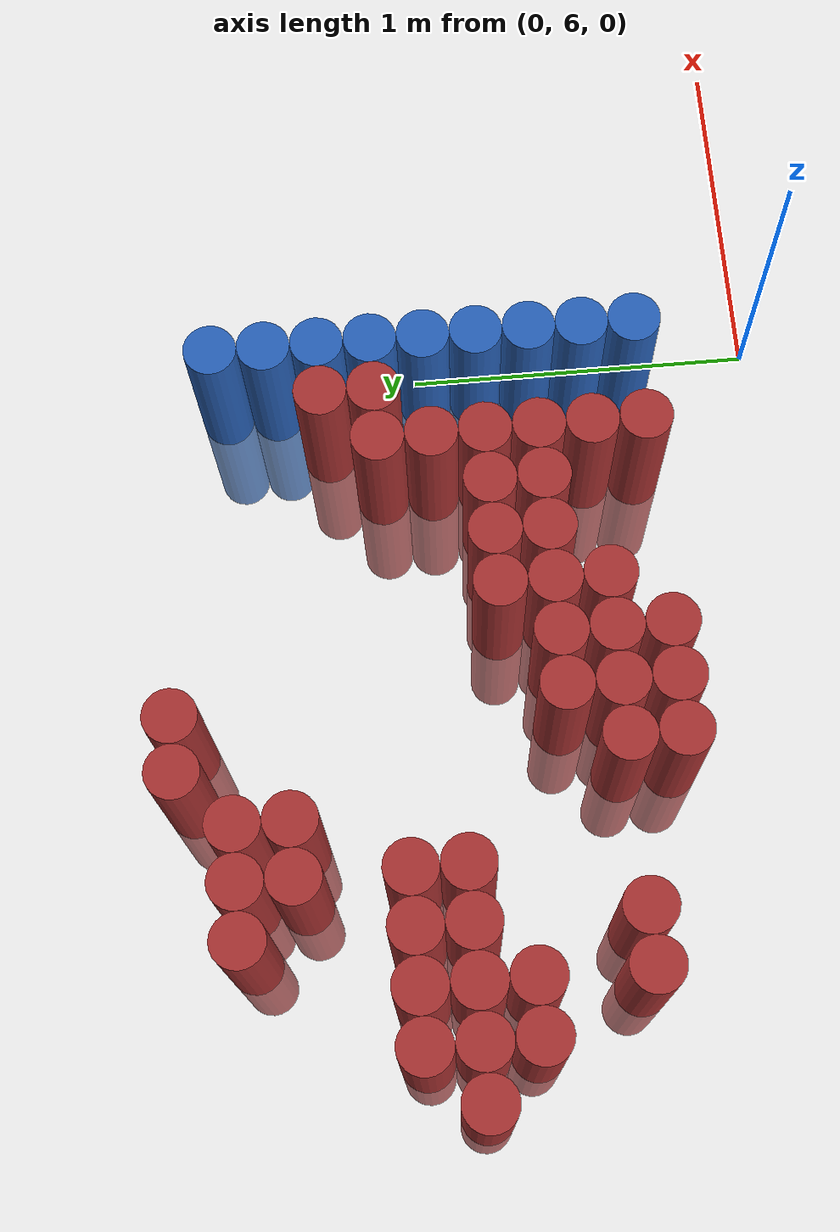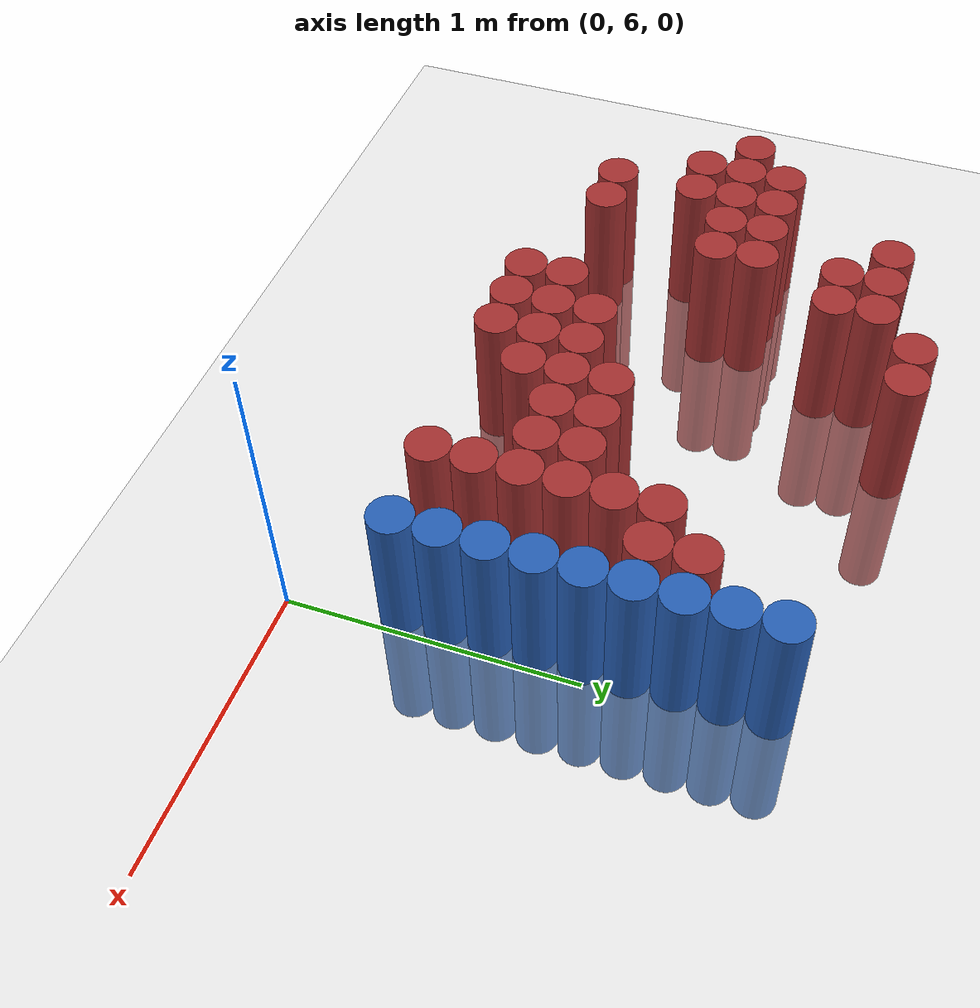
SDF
<sdf version="1.6">
 <world name="default">
  <model name="ground_plane">
   <static>1</static>
   <link name="link">
    <collision name="collision">
     <geometry><plane><normal>0 0 1</normal><size>100 100</size></plane></geometry>
     <surface><friction><ode><mu>100</mu><mu2>50</mu2></ode></friction></surface>
    </collision>
    <visual name="visual">
     <cast_shadows>0</cast_shadows>
     <geometry><plane><normal>0 0 1</normal><size>100 100</size></plane></geometry>
     <material>
      <script><uri>file://media/materials/scripts/gazebo.material</uri><name>Gazebo/Grey</name></script>
     </material>
    </visual>
   </link>
  </model>
  <model name="unit_cylinder_182">
   <static>1</static>
   <pose>-2.175000 6.975000 0.000000 0.000000 0.000000 0.000000</pose>
   <link name="link">
    <inertial>
     <mass>1</mass>
     <inertia><ixx>0.145833</ixx><ixy>0</ixy><ixz>0</ixz><iyy>0.145833</iyy><iyz>0</iyz><izz>0.125</izz></inertia>
    </inertial>
    <collision name="collision">
     <geometry><cylinder><radius>0.075000</radius><length>1</length></cylinder></geometry>
    </collision>
    <visual name="visual">
     <geometry><cylinder><radius>0.075000</radius><length>1</length></cylinder></geometry>
     <material>
      <ambient>0.648000 0.192000 0.192000 1</ambient>
      <diffuse>0.648000 0.192000 0.192000 1</diffuse>
     </material>
     <material>
      <script><name>Gazebo/Grey</name><uri>file://media/materials/scripts/gazebo.material</uri></script>
     </material>
    </visual>
   </link>
  </model>
  <model name="unit_cylinder_188">
   <static>1</static>
   <pose>-2.025000 6.825000 0.000000 0.000000 0.000000 0.000000</pose>
   <link name="link">
    <inertial>
     <mass>1</mass>
     <inertia><ixx>0.145833</ixx><ixy>0</ixy><ixz>0</ixz><iyy>0.145833</iyy><iyz>0</iyz><izz>0.125</izz></inertia>
    </inertial>
    <collision name="collision">
     <geometry><cylinder><radius>0.075000</radius><length>1</length></cylinder></geometry>
    </collision>
    <visual name="visual">
     <geometry><cylinder><radius>0.075000</radius><length>1</length></cylinder></geometry>
     <material>
      <ambient>0.648000 0.192000 0.192000 1</ambient>
      <diffuse>0.648000 0.192000 0.192000 1</diffuse>
     </material>
     <material>
      <script><name>Gazebo/Grey</name><uri>file://media/materials/scripts/gazebo.material</uri></script>
     </material>
    </visual>
   </link>
  </model>
  <model name="unit_cylinder_189">
   <static>1</static>
   <pose>-2.025000 6.975000 0.000000 0.000000 0.000000 0.000000</pose>
   <link name="link">
    <inertial>
     <mass>1</mass>
     <inertia><ixx>0.145833</ixx><ixy>0</ixy><ixz>0</ixz><iyy>0.145833</iyy><iyz>0</iyz><izz>0.125</izz></inertia>
    </inertial>
    <collision name="collision">
     <geometry><cylinder><radius>0.075000</radius><length>1</length></cylinder></geometry>
    </collision>
    <visual name="visual">
     <geometry><cylinder><radius>0.075000</radius><length>1</length></cylinder></geometry>
     <material>
      <ambient>0.648000 0.192000 0.192000 1</ambient>
      <diffuse>0.648000 0.192000 0.192000 1</diffuse>
     </material>
     <material>
      <script><name>Gazebo/Grey</name><uri>file://media/materials/scripts/gazebo.material</uri></script>
     </material>
    </visual>
   </link>
  </model>
  <model name="unit_cylinder_190">
   <static>1</static>
   <pose>-2.025000 7.125000 0.000000 0.000000 0.000000 0.000000</pose>
   <link name="link">
    <inertial>
     <mass>1</mass>
     <inertia><ixx>0.145833</ixx><ixy>0</ixy><ixz>0</ixz><iyy>0.145833</iyy><iyz>0</iyz><izz>0.125</izz></inertia>
    </inertial>
    <collision name="collision">
     <geometry><cylinder><radius>0.075000</radius><length>1</length></cylinder></geometry>
    </collision>
    <visual name="visual">
     <geometry><cylinder><radius>0.075000</radius><length>1</length></cylinder></geometry>
     <material>
      <ambient>0.648000 0.192000 0.192000 1</ambient>
      <diffuse>0.648000 0.192000 0.192000 1</diffuse>
     </material>
     <material>
      <script><name>Gazebo/Grey</name><uri>file://media/materials/scripts/gazebo.material</uri></script>
     </material>
    </visual>
   </link>
  </model>
  <model name="unit_cylinder_197">
   <static>1</static>
   <pose>-1.875000 6.525000 0.000000 0.000000 0.000000 0.000000</pose>
   <link name="link">
    <inertial>
     <mass>1</mass>
     <inertia><ixx>0.145833</ixx><ixy>0</ixy><ixz>0</ixz><iyy>0.145833</iyy><iyz>0</iyz><izz>0.125</izz></inertia>
    </inertial>
    <collision name="collision">
     <geometry><cylinder><radius>0.075000</radius><length>1</length></cylinder></geometry>
    </collision>
    <visual name="visual">
     <geometry><cylinder><radius>0.075000</radius><length>1</length></cylinder></geometry>
     <material>
      <ambient>0.648000 0.192000 0.192000 1</ambient>
      <diffuse>0.648000 0.192000 0.192000 1</diffuse>
     </material>
     <material>
      <script><name>Gazebo/Grey</name><uri>file://media/materials/scripts/gazebo.material</uri></script>
     </material>
    </visual>
   </link>
  </model>
  <model name="unit_cylinder_198">
   <static>1</static>
   <pose>-1.875000 6.825000 0.000000 0.000000 0.000000 0.000000</pose>
   <link name="link">
    <inertial>
     <mass>1</mass>
     <inertia><ixx>0.145833</ixx><ixy>0</ixy><ixz>0</ixz><iyy>0.145833</iyy><iyz>0</iyz><izz>0.125</izz></inertia>
    </inertial>
    <collision name="collision">
     <geometry><cylinder><radius>0.075000</radius><length>1</length></cylinder></geometry>
    </collision>
    <visual name="visual">
     <geometry><cylinder><radius>0.075000</radius><length>1</length></cylinder></geometry>
     <material>
      <ambient>0.648000 0.192000 0.192000 1</ambient>
      <diffuse>0.648000 0.192000 0.192000 1</diffuse>
     </material>
     <material>
      <script><name>Gazebo/Grey</name><uri>file://media/materials/scripts/gazebo.material</uri></script>
     </material>
    </visual>
   </link>
  </model>
  <model name="unit_cylinder_199">
   <static>1</static>
   <pose>-1.875000 6.975000 0.000000 0.000000 0.000000 0.000000</pose>
   <link name="link">
    <inertial>
     <mass>1</mass>
     <inertia><ixx>0.145833</ixx><ixy>0</ixy><ixz>0</ixz><iyy>0.145833</iyy><iyz>0</iyz><izz>0.125</izz></inertia>
    </inertial>
    <collision name="collision">
     <geometry><cylinder><radius>0.075000</radius><length>1</length></cylinder></geometry>
    </collision>
    <visual name="visual">
     <geometry><cylinder><radius>0.075000</radius><length>1</length></cylinder></geometry>
     <material>
      <ambient>0.648000 0.192000 0.192000 1</ambient>
      <diffuse>0.648000 0.192000 0.192000 1</diffuse>
     </material>
     <material>
      <script><name>Gazebo/Grey</name><uri>file://media/materials/scripts/gazebo.material</uri></script>
     </material>
    </visual>
   </link>
  </model>
  <model name="unit_cylinder_200">
   <static>1</static>
   <pose>-1.875000 7.125000 0.000000 0.000000 0.000000 0.000000</pose>
   <link name="link">
    <inertial>
     <mass>1</mass>
     <inertia><ixx>0.145833</ixx><ixy>0</ixy><ixz>0</ixz><iyy>0.145833</iyy><iyz>0</iyz><izz>0.125</izz></inertia>
    </inertial>
    <collision name="collision">
     <geometry><cylinder><radius>0.075000</radius><length>1</length></cylinder></geometry>
    </collision>
    <visual name="visual">
     <geometry><cylinder><radius>0.075000</radius><length>1</length></cylinder></geometry>
     <material>
      <ambient>0.648000 0.192000 0.192000 1</ambient>
      <diffuse>0.648000 0.192000 0.192000 1</diffuse>
     </material>
     <material>
      <script><name>Gazebo/Grey</name><uri>file://media/materials/scripts/gazebo.material</uri></script>
     </material>
    </visual>
   </link>
  </model>
  <model name="unit_cylinder_207">
   <static>1</static>
   <pose>-1.725000 6.525000 0.000000 0.000000 0.000000 0.000000</pose>
   <link name="link">
    <inertial>
     <mass>1</mass>
     <inertia><ixx>0.145833</ixx><ixy>0</ixy><ixz>0</ixz><iyy>0.145833</iyy><iyz>0</iyz><izz>0.125</izz></inertia>
    </inertial>
    <collision name="collision">
     <geometry><cylinder><radius>0.075000</radius><length>1</length></cylinder></geometry>
    </collision>
    <visual name="visual">
     <geometry><cylinder><radius>0.075000</radius><length>1</length></cylinder></geometry>
     <material>
      <ambient>0.648000 0.192000 0.192000 1</ambient>
      <diffuse>0.648000 0.192000 0.192000 1</diffuse>
     </material>
     <material>
      <script><name>Gazebo/Grey</name><uri>file://media/materials/scripts/gazebo.material</uri></script>
     </material>
    </visual>
   </link>
  </model>
  <model name="unit_cylinder_208">
   <static>1</static>
   <pose>-1.725000 6.975000 0.000000 0.000000 0.000000 0.000000</pose>
   <link name="link">
    <inertial>
     <mass>1</mass>
     <inertia><ixx>0.145833</ixx><ixy>0</ixy><ixz>0</ixz><iyy>0.145833</iyy><iyz>0</iyz><izz>0.125</izz></inertia>
    </inertial>
    <collision name="collision">
     <geometry><cylinder><radius>0.075000</radius><length>1</length></cylinder></geometry>
    </collision>
    <visual name="visual">
     <geometry><cylinder><radius>0.075000</radius><length>1</length></cylinder></geometry>
     <material>
      <ambient>0.648000 0.192000 0.192000 1</ambient>
      <diffuse>0.648000 0.192000 0.192000 1</diffuse>
     </material>
     <material>
      <script><name>Gazebo/Grey</name><uri>file://media/materials/scripts/gazebo.material</uri></script>
     </material>
    </visual>
   </link>
  </model>
  <model name="unit_cylinder_209">
   <static>1</static>
   <pose>-1.725000 7.125000 0.000000 0.000000 0.000000 0.000000</pose>
   <link name="link">
    <inertial>
     <mass>1</mass>
     <inertia><ixx>0.145833</ixx><ixy>0</ixy><ixz>0</ixz><iyy>0.145833</iyy><iyz>0</iyz><izz>0.125</izz></inertia>
    </inertial>
    <collision name="collision">
     <geometry><cylinder><radius>0.075000</radius><length>1</length></cylinder></geometry>
    </collision>
    <visual name="visual">
     <geometry><cylinder><radius>0.075000</radius><length>1</length></cylinder></geometry>
     <material>
      <ambient>0.648000 0.192000 0.192000 1</ambient>
      <diffuse>0.648000 0.192000 0.192000 1</diffuse>
     </material>
     <material>
      <script><name>Gazebo/Grey</name><uri>file://media/materials/scripts/gazebo.material</uri></script>
     </material>
    </visual>
   </link>
  </model>
  <model name="unit_cylinder_210">
   <static>1</static>
   <pose>-1.725000 7.575000 0.000000 0.000000 0.000000 0.000000</pose>
   <link name="link">
    <inertial>
     <mass>1</mass>
     <inertia><ixx>0.145833</ixx><ixy>0</ixy><ixz>0</ixz><iyy>0.145833</iyy><iyz>0</iyz><izz>0.125</izz></inertia>
    </inertial>
    <collision name="collision">
     <geometry><cylinder><radius>0.075000</radius><length>1</length></cylinder></geometry>
    </collision>
    <visual name="visual">
     <geometry><cylinder><radius>0.075000</radius><length>1</length></cylinder></geometry>
     <material>
      <ambient>0.648000 0.192000 0.192000 1</ambient>
      <diffuse>0.648000 0.192000 0.192000 1</diffuse>
     </material>
     <material>
      <script><name>Gazebo/Grey</name><uri>file://media/materials/scripts/gazebo.material</uri></script>
     </material>
    </visual>
   </link>
  </model>
  <model name="unit_cylinder_214">
   <static>1</static>
   <pose>-1.575000 6.975000 0.000000 0.000000 0.000000 0.000000</pose>
   <link name="link">
    <inertial>
     <mass>1</mass>
     <inertia><ixx>0.145833</ixx><ixy>0</ixy><ixz>0</ixz><iyy>0.145833</iyy><iyz>0</iyz><izz>0.125</izz></inertia>
    </inertial>
    <collision name="collision">
     <geometry><cylinder><radius>0.075000</radius><length>1</length></cylinder></geometry>
    </collision>
    <visual name="visual">
     <geometry><cylinder><radius>0.075000</radius><length>1</length></cylinder></geometry>
     <material>
      <ambient>0.648000 0.192000 0.192000 1</ambient>
      <diffuse>0.648000 0.192000 0.192000 1</diffuse>
     </material>
     <material>
      <script><name>Gazebo/Grey</name><uri>file://media/materials/scripts/gazebo.material</uri></script>
     </material>
    </visual>
   </link>
  </model>
  <model name="unit_cylinder_215">
   <static>1</static>
   <pose>-1.575000 7.125000 0.000000 0.000000 0.000000 0.000000</pose>
   <link name="link">
    <inertial>
     <mass>1</mass>
     <inertia><ixx>0.145833</ixx><ixy>0</ixy><ixz>0</ixz><iyy>0.145833</iyy><iyz>0</iyz><izz>0.125</izz></inertia>
    </inertial>
    <collision name="collision">
     <geometry><cylinder><radius>0.075000</radius><length>1</length></cylinder></geometry>
    </collision>
    <visual name="visual">
     <geometry><cylinder><radius>0.075000</radius><length>1</length></cylinder></geometry>
     <material>
      <ambient>0.648000 0.192000 0.192000 1</ambient>
      <diffuse>0.648000 0.192000 0.192000 1</diffuse>
     </material>
     <material>
      <script><name>Gazebo/Grey</name><uri>file://media/materials/scripts/gazebo.material</uri></script>
     </material>
    </visual>
   </link>
  </model>
  <model name="unit_cylinder_216">
   <static>1</static>
   <pose>-1.575000 7.425000 0.000000 0.000000 0.000000 0.000000</pose>
   <link name="link">
    <inertial>
     <mass>1</mass>
     <inertia><ixx>0.145833</ixx><ixy>0</ixy><ixz>0</ixz><iyy>0.145833</iyy><iyz>0</iyz><izz>0.125</izz></inertia>
    </inertial>
    <collision name="collision">
     <geometry><cylinder><radius>0.075000</radius><length>1</length></cylinder></geometry>
    </collision>
    <visual name="visual">
     <geometry><cylinder><radius>0.075000</radius><length>1</length></cylinder></geometry>
     <material>
      <ambient>0.648000 0.192000 0.192000 1</ambient>
      <diffuse>0.648000 0.192000 0.192000 1</diffuse>
     </material>
     <material>
      <script><name>Gazebo/Grey</name><uri>file://media/materials/scripts/gazebo.material</uri></script>
     </material>
    </visual>
   </link>
  </model>
  <model name="unit_cylinder_217">
   <static>1</static>
   <pose>-1.575000 7.575000 0.000000 0.000000 0.000000 0.000000</pose>
   <link name="link">
    <inertial>
     <mass>1</mass>
     <inertia><ixx>0.145833</ixx><ixy>0</ixy><ixz>0</ixz><iyy>0.145833</iyy><iyz>0</iyz><izz>0.125</izz></inertia>
    </inertial>
    <collision name="collision">
     <geometry><cylinder><radius>0.075000</radius><length>1</length></cylinder></geometry>
    </collision>
    <visual name="visual">
     <geometry><cylinder><radius>0.075000</radius><length>1</length></cylinder></geometry>
     <material>
      <ambient>0.648000 0.192000 0.192000 1</ambient>
      <diffuse>0.648000 0.192000 0.192000 1</diffuse>
     </material>
     <material>
      <script><name>Gazebo/Grey</name><uri>file://media/materials/scripts/gazebo.material</uri></script>
     </material>
    </visual>
   </link>
  </model>
  <model name="unit_cylinder_218">
   <static>1</static>
   <pose>-1.425000 7.425000 0.000000 0.000000 0.000000 0.000000</pose>
   <link name="link">
    <inertial>
     <mass>1</mass>
     <inertia><ixx>0.145833</ixx><ixy>0</ixy><ixz>0</ixz><iyy>0.145833</iyy><iyz>0</iyz><izz>0.125</izz></inertia>
    </inertial>
    <collision name="collision">
     <geometry><cylinder><radius>0.075000</radius><length>1</length></cylinder></geometry>
    </collision>
    <visual name="visual">
     <geometry><cylinder><radius>0.075000</radius><length>1</length></cylinder></geometry>
     <material>
      <ambient>0.648000 0.192000 0.192000 1</ambient>
      <diffuse>0.648000 0.192000 0.192000 1</diffuse>
     </material>
     <material>
      <script><name>Gazebo/Grey</name><uri>file://media/materials/scripts/gazebo.material</uri></script>
     </material>
    </visual>
   </link>
  </model>
  <model name="unit_cylinder_219">
   <static>1</static>
   <pose>-1.425000 7.575000 0.000000 0.000000 0.000000 0.000000</pose>
   <link name="link">
    <inertial>
     <mass>1</mass>
     <inertia><ixx>0.145833</ixx><ixy>0</ixy><ixz>0</ixz><iyy>0.145833</iyy><iyz>0</iyz><izz>0.125</izz></inertia>
    </inertial>
    <collision name="collision">
     <geometry><cylinder><radius>0.075000</radius><length>1</length></cylinder></geometry>
    </collision>
    <visual name="visual">
     <geometry><cylinder><radius>0.075000</radius><length>1</length></cylinder></geometry>
     <material>
      <ambient>0.648000 0.192000 0.192000 1</ambient>
      <diffuse>0.648000 0.192000 0.192000 1</diffuse>
     </material>
     <material>
      <script><name>Gazebo/Grey</name><uri>file://media/materials/scripts/gazebo.material</uri></script>
     </material>
    </visual>
   </link>
  </model>
  <model name="unit_cylinder_220">
   <static>1</static>
   <pose>-1.275000 6.375000 0.000000 0.000000 0.000000 0.000000</pose>
   <link name="link">
    <inertial>
     <mass>1</mass>
     <inertia><ixx>0.145833</ixx><ixy>0</ixy><ixz>0</ixz><iyy>0.145833</iyy><iyz>0</iyz><izz>0.125</izz></inertia>
    </inertial>
    <collision name="collision">
     <geometry><cylinder><radius>0.075000</radius><length>1</length></cylinder></geometry>
    </collision>
    <visual name="visual">
     <geometry><cylinder><radius>0.075000</radius><length>1</length></cylinder></geometry>
     <material>
      <ambient>0.648000 0.192000 0.192000 1</ambient>
      <diffuse>0.648000 0.192000 0.192000 1</diffuse>
     </material>
     <material>
      <script><name>Gazebo/Grey</name><uri>file://media/materials/scripts/gazebo.material</uri></script>
     </material>
    </visual>
   </link>
  </model>
  <model name="unit_cylinder_221">
   <static>1</static>
   <pose>-1.275000 6.525000 0.000000 0.000000 0.000000 0.000000</pose>
   <link name="link">
    <inertial>
     <mass>1</mass>
     <inertia><ixx>0.145833</ixx><ixy>0</ixy><ixz>0</ixz><iyy>0.145833</iyy><iyz>0</iyz><izz>0.125</izz></inertia>
    </inertial>
    <collision name="collision">
     <geometry><cylinder><radius>0.075000</radius><length>1</length></cylinder></geometry>
    </collision>
    <visual name="visual">
     <geometry><cylinder><radius>0.075000</radius><length>1</length></cylinder></geometry>
     <material>
      <ambient>0.648000 0.192000 0.192000 1</ambient>
      <diffuse>0.648000 0.192000 0.192000 1</diffuse>
     </material>
     <material>
      <script><name>Gazebo/Grey</name><uri>file://media/materials/scripts/gazebo.material</uri></script>
     </material>
    </visual>
   </link>
  </model>
  <model name="unit_cylinder_222">
   <static>1</static>
   <pose>-1.275000 7.725000 0.000000 0.000000 0.000000 0.000000</pose>
   <link name="link">
    <inertial>
     <mass>1</mass>
     <inertia><ixx>0.145833</ixx><ixy>0</ixy><ixz>0</ixz><iyy>0.145833</iyy><iyz>0</iyz><izz>0.125</izz></inertia>
    </inertial>
    <collision name="collision">
     <geometry><cylinder><radius>0.075000</radius><length>1</length></cylinder></geometry>
    </collision>
    <visual name="visual">
     <geometry><cylinder><radius>0.075000</radius><length>1</length></cylinder></geometry>
     <material>
      <ambient>0.648000 0.192000 0.192000 1</ambient>
      <diffuse>0.648000 0.192000 0.192000 1</diffuse>
     </material>
     <material>
      <script><name>Gazebo/Grey</name><uri>file://media/materials/scripts/gazebo.material</uri></script>
     </material>
    </visual>
   </link>
  </model>
  <model name="unit_cylinder_227">
   <static>1</static>
   <pose>-1.125000 6.375000 0.000000 0.000000 0.000000 0.000000</pose>
   <link name="link">
    <inertial>
     <mass>1</mass>
     <inertia><ixx>0.145833</ixx><ixy>0</ixy><ixz>0</ixz><iyy>0.145833</iyy><iyz>0</iyz><izz>0.125</izz></inertia>
    </inertial>
    <collision name="collision">
     <geometry><cylinder><radius>0.075000</radius><length>1</length></cylinder></geometry>
    </collision>
    <visual name="visual">
     <geometry><cylinder><radius>0.075000</radius><length>1</length></cylinder></geometry>
     <material>
      <ambient>0.648000 0.192000 0.192000 1</ambient>
      <diffuse>0.648000 0.192000 0.192000 1</diffuse>
     </material>
     <material>
      <script><name>Gazebo/Grey</name><uri>file://media/materials/scripts/gazebo.material</uri></script>
     </material>
    </visual>
   </link>
  </model>
  <model name="unit_cylinder_228">
   <static>1</static>
   <pose>-1.125000 6.525000 0.000000 0.000000 0.000000 0.000000</pose>
   <link name="link">
    <inertial>
     <mass>1</mass>
     <inertia><ixx>0.145833</ixx><ixy>0</ixy><ixz>0</ixz><iyy>0.145833</iyy><iyz>0</iyz><izz>0.125</izz></inertia>
    </inertial>
    <collision name="collision">
     <geometry><cylinder><radius>0.075000</radius><length>1</length></cylinder></geometry>
    </collision>
    <visual name="visual">
     <geometry><cylinder><radius>0.075000</radius><length>1</length></cylinder></geometry>
     <material>
      <ambient>0.648000 0.192000 0.192000 1</ambient>
      <diffuse>0.648000 0.192000 0.192000 1</diffuse>
     </material>
     <material>
      <script><name>Gazebo/Grey</name><uri>file://media/materials/scripts/gazebo.material</uri></script>
     </material>
    </visual>
   </link>
  </model>
  <model name="unit_cylinder_229">
   <static>1</static>
   <pose>-1.125000 6.675000 0.000000 0.000000 0.000000 0.000000</pose>
   <link name="link">
    <inertial>
     <mass>1</mass>
     <inertia><ixx>0.145833</ixx><ixy>0</ixy><ixz>0</ixz><iyy>0.145833</iyy><iyz>0</iyz><izz>0.125</izz></inertia>
    </inertial>
    <collision name="collision">
     <geometry><cylinder><radius>0.075000</radius><length>1</length></cylinder></geometry>
    </collision>
    <visual name="visual">
     <geometry><cylinder><radius>0.075000</radius><length>1</length></cylinder></geometry>
     <material>
      <ambient>0.648000 0.192000 0.192000 1</ambient>
      <diffuse>0.648000 0.192000 0.192000 1</diffuse>
     </material>
     <material>
      <script><name>Gazebo/Grey</name><uri>file://media/materials/scripts/gazebo.material</uri></script>
     </material>
    </visual>
   </link>
  </model>
  <model name="unit_cylinder_230">
   <static>1</static>
   <pose>-1.125000 7.725000 0.000000 0.000000 0.000000 0.000000</pose>
   <link name="link">
    <inertial>
     <mass>1</mass>
     <inertia><ixx>0.145833</ixx><ixy>0</ixy><ixz>0</ixz><iyy>0.145833</iyy><iyz>0</iyz><izz>0.125</izz></inertia>
    </inertial>
    <collision name="collision">
     <geometry><cylinder><radius>0.075000</radius><length>1</length></cylinder></geometry>
    </collision>
    <visual name="visual">
     <geometry><cylinder><radius>0.075000</radius><length>1</length></cylinder></geometry>
     <material>
      <ambient>0.648000 0.192000 0.192000 1</ambient>
      <diffuse>0.648000 0.192000 0.192000 1</diffuse>
     </material>
     <material>
      <script><name>Gazebo/Grey</name><uri>file://media/materials/scripts/gazebo.material</uri></script>
     </material>
    </visual>
   </link>
  </model>
  <model name="unit_cylinder_236">
   <static>1</static>
   <pose>-0.975000 6.375000 0.000000 0.000000 0.000000 0.000000</pose>
   <link name="link">
    <inertial>
     <mass>1</mass>
     <inertia><ixx>0.145833</ixx><ixy>0</ixy><ixz>0</ixz><iyy>0.145833</iyy><iyz>0</iyz><izz>0.125</izz></inertia>
    </inertial>
    <collision name="collision">
     <geometry><cylinder><radius>0.075000</radius><length>1</length></cylinder></geometry>
    </collision>
    <visual name="visual">
     <geometry><cylinder><radius>0.075000</radius><length>1</length></cylinder></geometry>
     <material>
      <ambient>0.648000 0.192000 0.192000 1</ambient>
      <diffuse>0.648000 0.192000 0.192000 1</diffuse>
     </material>
     <material>
      <script><name>Gazebo/Grey</name><uri>file://media/materials/scripts/gazebo.material</uri></script>
     </material>
    </visual>
   </link>
  </model>
  <model name="unit_cylinder_237">
   <static>1</static>
   <pose>-0.975000 6.525000 0.000000 0.000000 0.000000 0.000000</pose>
   <link name="link">
    <inertial>
     <mass>1</mass>
     <inertia><ixx>0.145833</ixx><ixy>0</ixy><ixz>0</ixz><iyy>0.145833</iyy><iyz>0</iyz><izz>0.125</izz></inertia>
    </inertial>
    <collision name="collision">
     <geometry><cylinder><radius>0.075000</radius><length>1</length></cylinder></geometry>
    </collision>
    <visual name="visual">
     <geometry><cylinder><radius>0.075000</radius><length>1</length></cylinder></geometry>
     <material>
      <ambient>0.648000 0.192000 0.192000 1</ambient>
      <diffuse>0.648000 0.192000 0.192000 1</diffuse>
     </material>
     <material>
      <script><name>Gazebo/Grey</name><uri>file://media/materials/scripts/gazebo.material</uri></script>
     </material>
    </visual>
   </link>
  </model>
  <model name="unit_cylinder_238">
   <static>1</static>
   <pose>-0.975000 6.675000 0.000000 0.000000 0.000000 0.000000</pose>
   <link name="link">
    <inertial>
     <mass>1</mass>
     <inertia><ixx>0.145833</ixx><ixy>0</ixy><ixz>0</ixz><iyy>0.145833</iyy><iyz>0</iyz><izz>0.125</izz></inertia>
    </inertial>
    <collision name="collision">
     <geometry><cylinder><radius>0.075000</radius><length>1</length></cylinder></geometry>
    </collision>
    <visual name="visual">
     <geometry><cylinder><radius>0.075000</radius><length>1</length></cylinder></geometry>
     <material>
      <ambient>0.648000 0.192000 0.192000 1</ambient>
      <diffuse>0.648000 0.192000 0.192000 1</diffuse>
     </material>
     <material>
      <script><name>Gazebo/Grey</name><uri>file://media/materials/scripts/gazebo.material</uri></script>
     </material>
    </visual>
   </link>
  </model>
  <model name="unit_cylinder_244">
   <static>1</static>
   <pose>-0.825000 6.525000 0.000000 0.000000 0.000000 0.000000</pose>
   <link name="link">
    <inertial>
     <mass>1</mass>
     <inertia><ixx>0.145833</ixx><ixy>0</ixy><ixz>0</ixz><iyy>0.145833</iyy><iyz>0</iyz><izz>0.125</izz></inertia>
    </inertial>
    <collision name="collision">
     <geometry><cylinder><radius>0.075000</radius><length>1</length></cylinder></geometry>
    </collision>
    <visual name="visual">
     <geometry><cylinder><radius>0.075000</radius><length>1</length></cylinder></geometry>
     <material>
      <ambient>0.648000 0.192000 0.192000 1</ambient>
      <diffuse>0.648000 0.192000 0.192000 1</diffuse>
     </material>
     <material>
      <script><name>Gazebo/Grey</name><uri>file://media/materials/scripts/gazebo.material</uri></script>
     </material>
    </visual>
   </link>
  </model>
  <model name="unit_cylinder_245">
   <static>1</static>
   <pose>-0.825000 6.675000 0.000000 0.000000 0.000000 0.000000</pose>
   <link name="link">
    <inertial>
     <mass>1</mass>
     <inertia><ixx>0.145833</ixx><ixy>0</ixy><ixz>0</ixz><iyy>0.145833</iyy><iyz>0</iyz><izz>0.125</izz></inertia>
    </inertial>
    <collision name="collision">
     <geometry><cylinder><radius>0.075000</radius><length>1</length></cylinder></geometry>
    </collision>
    <visual name="visual">
     <geometry><cylinder><radius>0.075000</radius><length>1</length></cylinder></geometry>
     <material>
      <ambient>0.648000 0.192000 0.192000 1</ambient>
      <diffuse>0.648000 0.192000 0.192000 1</diffuse>
     </material>
     <material>
      <script><name>Gazebo/Grey</name><uri>file://media/materials/scripts/gazebo.material</uri></script>
     </material>
    </visual>
   </link>
  </model>
  <model name="unit_cylinder_246">
   <static>1</static>
   <pose>-0.825000 6.825000 0.000000 0.000000 0.000000 0.000000</pose>
   <link name="link">
    <inertial>
     <mass>1</mass>
     <inertia><ixx>0.145833</ixx><ixy>0</ixy><ixz>0</ixz><iyy>0.145833</iyy><iyz>0</iyz><izz>0.125</izz></inertia>
    </inertial>
    <collision name="collision">
     <geometry><cylinder><radius>0.075000</radius><length>1</length></cylinder></geometry>
    </collision>
    <visual name="visual">
     <geometry><cylinder><radius>0.075000</radius><length>1</length></cylinder></geometry>
     <material>
      <ambient>0.648000 0.192000 0.192000 1</ambient>
      <diffuse>0.648000 0.192000 0.192000 1</diffuse>
     </material>
     <material>
      <script><name>Gazebo/Grey</name><uri>file://media/materials/scripts/gazebo.material</uri></script>
     </material>
    </visual>
   </link>
  </model>
  <model name="unit_cylinder_257">
   <static>1</static>
   <pose>-0.675000 6.675000 0.000000 0.000000 0.000000 0.000000</pose>
   <link name="link">
    <inertial>
     <mass>1</mass>
     <inertia><ixx>0.145833</ixx><ixy>0</ixy><ixz>0</ixz><iyy>0.145833</iyy><iyz>0</iyz><izz>0.125</izz></inertia>
    </inertial>
    <collision name="collision">
     <geometry><cylinder><radius>0.075000</radius><length>1</length></cylinder></geometry>
    </collision>
    <visual name="visual">
     <geometry><cylinder><radius>0.075000</radius><length>1</length></cylinder></geometry>
     <material>
      <ambient>0.648000 0.192000 0.192000 1</ambient>
      <diffuse>0.648000 0.192000 0.192000 1</diffuse>
     </material>
     <material>
      <script><name>Gazebo/Grey</name><uri>file://media/materials/scripts/gazebo.material</uri></script>
     </material>
    </visual>
   </link>
  </model>
  <model name="unit_cylinder_258">
   <static>1</static>
   <pose>-0.675000 6.825000 0.000000 0.000000 0.000000 0.000000</pose>
   <link name="link">
    <inertial>
     <mass>1</mass>
     <inertia><ixx>0.145833</ixx><ixy>0</ixy><ixz>0</ixz><iyy>0.145833</iyy><iyz>0</iyz><izz>0.125</izz></inertia>
    </inertial>
    <collision name="collision">
     <geometry><cylinder><radius>0.075000</radius><length>1</length></cylinder></geometry>
    </collision>
    <visual name="visual">
     <geometry><cylinder><radius>0.075000</radius><length>1</length></cylinder></geometry>
     <material>
      <ambient>0.648000 0.192000 0.192000 1</ambient>
      <diffuse>0.648000 0.192000 0.192000 1</diffuse>
     </material>
     <material>
      <script><name>Gazebo/Grey</name><uri>file://media/materials/scripts/gazebo.material</uri></script>
     </material>
    </visual>
   </link>
  </model>
  <model name="unit_cylinder_263">
   <static>1</static>
   <pose>-0.525000 6.675000 0.000000 0.000000 0.000000 0.000000</pose>
   <link name="link">
    <inertial>
     <mass>1</mass>
     <inertia><ixx>0.145833</ixx><ixy>0</ixy><ixz>0</ixz><iyy>0.145833</iyy><iyz>0</iyz><izz>0.125</izz></inertia>
    </inertial>
    <collision name="collision">
     <geometry><cylinder><radius>0.075000</radius><length>1</length></cylinder></geometry>
    </collision>
    <visual name="visual">
     <geometry><cylinder><radius>0.075000</radius><length>1</length></cylinder></geometry>
     <material>
      <ambient>0.648000 0.192000 0.192000 1</ambient>
      <diffuse>0.648000 0.192000 0.192000 1</diffuse>
     </material>
     <material>
      <script><name>Gazebo/Grey</name><uri>file://media/materials/scripts/gazebo.material</uri></script>
     </material>
    </visual>
   </link>
  </model>
  <model name="unit_cylinder_264">
   <static>1</static>
   <pose>-0.525000 6.825000 0.000000 0.000000 0.000000 0.000000</pose>
   <link name="link">
    <inertial>
     <mass>1</mass>
     <inertia><ixx>0.145833</ixx><ixy>0</ixy><ixz>0</ixz><iyy>0.145833</iyy><iyz>0</iyz><izz>0.125</izz></inertia>
    </inertial>
    <collision name="collision">
     <geometry><cylinder><radius>0.075000</radius><length>1</length></cylinder></geometry>
    </collision>
    <visual name="visual">
     <geometry><cylinder><radius>0.075000</radius><length>1</length></cylinder></geometry>
     <material>
      <ambient>0.648000 0.192000 0.192000 1</ambient>
      <diffuse>0.648000 0.192000 0.192000 1</diffuse>
     </material>
     <material>
      <script><name>Gazebo/Grey</name><uri>file://media/materials/scripts/gazebo.material</uri></script>
     </material>
    </visual>
   </link>
  </model>
  <model name="unit_cylinder_269">
   <static>1</static>
   <pose>-0.375000 6.375000 0.000000 0.000000 0.000000 0.000000</pose>
   <link name="link">
    <inertial>
     <mass>1</mass>
     <inertia><ixx>0.145833</ixx><ixy>0</ixy><ixz>0</ixz><iyy>0.145833</iyy><iyz>0</iyz><izz>0.125</izz></inertia>
    </inertial>
    <collision name="collision">
     <geometry><cylinder><radius>0.075000</radius><length>1</length></cylinder></geometry>
    </collision>
    <visual name="visual">
     <geometry><cylinder><radius>0.075000</radius><length>1</length></cylinder></geometry>
     <material>
      <ambient>0.648000 0.192000 0.192000 1</ambient>
      <diffuse>0.648000 0.192000 0.192000 1</diffuse>
     </material>
     <material>
      <script><name>Gazebo/Grey</name><uri>file://media/materials/scripts/gazebo.material</uri></script>
     </material>
    </visual>
   </link>
  </model>
  <model name="unit_cylinder_270">
   <static>1</static>
   <pose>-0.375000 6.525000 0.000000 0.000000 0.000000 0.000000</pose>
   <link name="link">
    <inertial>
     <mass>1</mass>
     <inertia><ixx>0.145833</ixx><ixy>0</ixy><ixz>0</ixz><iyy>0.145833</iyy><iyz>0</iyz><izz>0.125</izz></inertia>
    </inertial>
    <collision name="collision">
     <geometry><cylinder><radius>0.075000</radius><length>1</length></cylinder></geometry>
    </collision>
    <visual name="visual">
     <geometry><cylinder><radius>0.075000</radius><length>1</length></cylinder></geometry>
     <material>
      <ambient>0.648000 0.192000 0.192000 1</ambient>
      <diffuse>0.648000 0.192000 0.192000 1</diffuse>
     </material>
     <material>
      <script><name>Gazebo/Grey</name><uri>file://media/materials/scripts/gazebo.material</uri></script>
     </material>
    </visual>
   </link>
  </model>
  <model name="unit_cylinder_271">
   <static>1</static>
   <pose>-0.375000 6.675000 0.000000 0.000000 0.000000 0.000000</pose>
   <link name="link">
    <inertial>
     <mass>1</mass>
     <inertia><ixx>0.145833</ixx><ixy>0</ixy><ixz>0</ixz><iyy>0.145833</iyy><iyz>0</iyz><izz>0.125</izz></inertia>
    </inertial>
    <collision name="collision">
     <geometry><cylinder><radius>0.075000</radius><length>1</length></cylinder></geometry>
    </collision>
    <visual name="visual">
     <geometry><cylinder><radius>0.075000</radius><length>1</length></cylinder></geometry>
     <material>
      <ambient>0.648000 0.192000 0.192000 1</ambient>
      <diffuse>0.648000 0.192000 0.192000 1</diffuse>
     </material>
     <material>
      <script><name>Gazebo/Grey</name><uri>file://media/materials/scripts/gazebo.material</uri></script>
     </material>
    </visual>
   </link>
  </model>
  <model name="unit_cylinder_272">
   <static>1</static>
   <pose>-0.375000 6.825000 0.000000 0.000000 0.000000 0.000000</pose>
   <link name="link">
    <inertial>
     <mass>1</mass>
     <inertia><ixx>0.145833</ixx><ixy>0</ixy><ixz>0</ixz><iyy>0.145833</iyy><iyz>0</iyz><izz>0.125</izz></inertia>
    </inertial>
    <collision name="collision">
     <geometry><cylinder><radius>0.075000</radius><length>1</length></cylinder></geometry>
    </collision>
    <visual name="visual">
     <geometry><cylinder><radius>0.075000</radius><length>1</length></cylinder></geometry>
     <material>
      <ambient>0.648000 0.192000 0.192000 1</ambient>
      <diffuse>0.648000 0.192000 0.192000 1</diffuse>
     </material>
     <material>
      <script><name>Gazebo/Grey</name><uri>file://media/materials/scripts/gazebo.material</uri></script>
     </material>
    </visual>
   </link>
  </model>
  <model name="unit_cylinder_273">
   <static>1</static>
   <pose>-0.375000 6.975000 0.000000 0.000000 0.000000 0.000000</pose>
   <link name="link">
    <inertial>
     <mass>1</mass>
     <inertia><ixx>0.145833</ixx><ixy>0</ixy><ixz>0</ixz><iyy>0.145833</iyy><iyz>0</iyz><izz>0.125</izz></inertia>
    </inertial>
    <collision name="collision">
     <geometry><cylinder><radius>0.075000</radius><length>1</length></cylinder></geometry>
    </collision>
    <visual name="visual">
     <geometry><cylinder><radius>0.075000</radius><length>1</length></cylinder></geometry>
     <material>
      <ambient>0.648000 0.192000 0.192000 1</ambient>
      <diffuse>0.648000 0.192000 0.192000 1</diffuse>
     </material>
     <material>
      <script><name>Gazebo/Grey</name><uri>file://media/materials/scripts/gazebo.material</uri></script>
     </material>
    </visual>
   </link>
  </model>
  <model name="unit_cylinder_274">
   <static>1</static>
   <pose>-0.375000 7.125000 0.000000 0.000000 0.000000 0.000000</pose>
   <link name="link">
    <inertial>
     <mass>1</mass>
     <inertia><ixx>0.145833</ixx><ixy>0</ixy><ixz>0</ixz><iyy>0.145833</iyy><iyz>0</iyz><izz>0.125</izz></inertia>
    </inertial>
    <collision name="collision">
     <geometry><cylinder><radius>0.075000</radius><length>1</length></cylinder></geometry>
    </collision>
    <visual name="visual">
     <geometry><cylinder><radius>0.075000</radius><length>1</length></cylinder></geometry>
     <material>
      <ambient>0.648000 0.192000 0.192000 1</ambient>
      <diffuse>0.648000 0.192000 0.192000 1</diffuse>
     </material>
     <material>
      <script><name>Gazebo/Grey</name><uri>file://media/materials/scripts/gazebo.material</uri></script>
     </material>
    </visual>
   </link>
  </model>
  <model name="unit_cylinder_280">
   <static>1</static>
   <pose>-0.225000 7.125000 0.000000 0.000000 0.000000 0.000000</pose>
   <link name="link">
    <inertial>
     <mass>1</mass>
     <inertia><ixx>0.145833</ixx><ixy>0</ixy><ixz>0</ixz><iyy>0.145833</iyy><iyz>0</iyz><izz>0.125</izz></inertia>
    </inertial>
    <collision name="collision">
     <geometry><cylinder><radius>0.075000</radius><length>1</length></cylinder></geometry>
    </collision>
    <visual name="visual">
     <geometry><cylinder><radius>0.075000</radius><length>1</length></cylinder></geometry>
     <material>
      <ambient>0.648000 0.192000 0.192000 1</ambient>
      <diffuse>0.648000 0.192000 0.192000 1</diffuse>
     </material>
     <material>
      <script><name>Gazebo/Grey</name><uri>file://media/materials/scripts/gazebo.material</uri></script>
     </material>
    </visual>
   </link>
  </model>
  <model name="unit_cylinder_281">
   <static>1</static>
   <pose>-0.225000 7.275000 0.000000 0.000000 0.000000 0.000000</pose>
   <link name="link">
    <inertial>
     <mass>1</mass>
     <inertia><ixx>0.145833</ixx><ixy>0</ixy><ixz>0</ixz><iyy>0.145833</iyy><iyz>0</iyz><izz>0.125</izz></inertia>
    </inertial>
    <collision name="collision">
     <geometry><cylinder><radius>0.075000</radius><length>1</length></cylinder></geometry>
    </collision>
    <visual name="visual">
     <geometry><cylinder><radius>0.075000</radius><length>1</length></cylinder></geometry>
     <material>
      <ambient>0.648000 0.192000 0.192000 1</ambient>
      <diffuse>0.648000 0.192000 0.192000 1</diffuse>
     </material>
     <material>
      <script><name>Gazebo/Grey</name><uri>file://media/materials/scripts/gazebo.material</uri></script>
     </material>
    </visual>
   </link>
  </model>
  <model name="unit_cylinder_295">
   <static>1</static>
   <pose>-0.075000 6.375000 0.000000 0.000000 0.000000 0.000000</pose>
   <link name="link">
    <inertial>
     <mass>1</mass>
     <inertia><ixx>0.145833</ixx><ixy>0</ixy><ixz>0</ixz><iyy>0.145833</iyy><iyz>0</iyz><izz>0.125</izz></inertia>
    </inertial>
    <collision name="collision">
     <geometry><cylinder><radius>0.075000</radius><length>1</length></cylinder></geometry>
    </collision>
    <visual name="visual">
     <geometry><cylinder><radius>0.075000</radius><length>1</length></cylinder></geometry>
     <material>
      <ambient>0.152000 0.379000 0.720000 1</ambient>
      <diffuse>0.152000 0.379000 0.720000 1</diffuse>
     </material>
     <material>
      <script><name>Gazebo/Grey</name><uri>file://media/materials/scripts/gazebo.material</uri></script>
     </material>
    </visual>
   </link>
  </model>
  <model name="unit_cylinder_296">
   <static>1</static>
   <pose>-0.075000 6.525000 0.000000 0.000000 0.000000 0.000000</pose>
   <link name="link">
    <inertial>
     <mass>1</mass>
     <inertia><ixx>0.145833</ixx><ixy>0</ixy><ixz>0</ixz><iyy>0.145833</iyy><iyz>0</iyz><izz>0.125</izz></inertia>
    </inertial>
    <collision name="collision">
     <geometry><cylinder><radius>0.075000</radius><length>1</length></cylinder></geometry>
    </collision>
    <visual name="visual">
     <geometry><cylinder><radius>0.075000</radius><length>1</length></cylinder></geometry>
     <material>
      <ambient>0.152000 0.379000 0.720000 1</ambient>
      <diffuse>0.152000 0.379000 0.720000 1</diffuse>
     </material>
     <material>
      <script><name>Gazebo/Grey</name><uri>file://media/materials/scripts/gazebo.material</uri></script>
     </material>
    </visual>
   </link>
  </model>
  <model name="unit_cylinder_297">
   <static>1</static>
   <pose>-0.075000 6.675000 0.000000 0.000000 0.000000 0.000000</pose>
   <link name="link">
    <inertial>
     <mass>1</mass>
     <inertia><ixx>0.145833</ixx><ixy>0</ixy><ixz>0</ixz><iyy>0.145833</iyy><iyz>0</iyz><izz>0.125</izz></inertia>
    </inertial>
    <collision name="collision">
     <geometry><cylinder><radius>0.075000</radius><length>1</length></cylinder></geometry>
    </collision>
    <visual name="visual">
     <geometry><cylinder><radius>0.075000</radius><length>1</length></cylinder></geometry>
     <material>
      <ambient>0.152000 0.379000 0.720000 1</ambient>
      <diffuse>0.152000 0.379000 0.720000 1</diffuse>
     </material>
     <material>
      <script><name>Gazebo/Grey</name><uri>file://media/materials/scripts/gazebo.material</uri></script>
     </material>
    </visual>
   </link>
  </model>
  <model name="unit_cylinder_298">
   <static>1</static>
   <pose>-0.075000 6.825000 0.000000 0.000000 0.000000 0.000000</pose>
   <link name="link">
    <inertial>
     <mass>1</mass>
     <inertia><ixx>0.145833</ixx><ixy>0</ixy><ixz>0</ixz><iyy>0.145833</iyy><iyz>0</iyz><izz>0.125</izz></inertia>
    </inertial>
    <collision name="collision">
     <geometry><cylinder><radius>0.075000</radius><length>1</length></cylinder></geometry>
    </collision>
    <visual name="visual">
     <geometry><cylinder><radius>0.075000</radius><length>1</length></cylinder></geometry>
     <material>
      <ambient>0.152000 0.379000 0.720000 1</ambient>
      <diffuse>0.152000 0.379000 0.720000 1</diffuse>
     </material>
     <material>
      <script><name>Gazebo/Grey</name><uri>file://media/materials/scripts/gazebo.material</uri></script>
     </material>
    </visual>
   </link>
  </model>
  <model name="unit_cylinder_299">
   <static>1</static>
   <pose>-0.075000 6.975000 0.000000 0.000000 0.000000 0.000000</pose>
   <link name="link">
    <inertial>
     <mass>1</mass>
     <inertia><ixx>0.145833</ixx><ixy>0</ixy><ixz>0</ixz><iyy>0.145833</iyy><iyz>0</iyz><izz>0.125</izz></inertia>
    </inertial>
    <collision name="collision">
     <geometry><cylinder><radius>0.075000</radius><length>1</length></cylinder></geometry>
    </collision>
    <visual name="visual">
     <geometry><cylinder><radius>0.075000</radius><length>1</length></cylinder></geometry>
     <material>
      <ambient>0.152000 0.379000 0.720000 1</ambient>
      <diffuse>0.152000 0.379000 0.720000 1</diffuse>
     </material>
     <material>
      <script><name>Gazebo/Grey</name><uri>file://media/materials/scripts/gazebo.material</uri></script>
     </material>
    </visual>
   </link>
  </model>
  <model name="unit_cylinder_300">
   <static>1</static>
   <pose>-0.075000 7.125000 0.000000 0.000000 0.000000 0.000000</pose>
   <link name="link">
    <inertial>
     <mass>1</mass>
     <inertia><ixx>0.145833</ixx><ixy>0</ixy><ixz>0</ixz><iyy>0.145833</iyy><iyz>0</iyz><izz>0.125</izz></inertia>
    </inertial>
    <collision name="collision">
     <geometry><cylinder><radius>0.075000</radius><length>1</length></cylinder></geometry>
    </collision>
    <visual name="visual">
     <geometry><cylinder><radius>0.075000</radius><length>1</length></cylinder></geometry>
     <material>
      <ambient>0.152000 0.379000 0.720000 1</ambient>
      <diffuse>0.152000 0.379000 0.720000 1</diffuse>
     </material>
     <material>
      <script><name>Gazebo/Grey</name><uri>file://media/materials/scripts/gazebo.material</uri></script>
     </material>
    </visual>
   </link>
  </model>
  <model name="unit_cylinder_301">
   <static>1</static>
   <pose>-0.075000 7.275000 0.000000 0.000000 0.000000 0.000000</pose>
   <link name="link">
    <inertial>
     <mass>1</mass>
     <inertia><ixx>0.145833</ixx><ixy>0</ixy><ixz>0</ixz><iyy>0.145833</iyy><iyz>0</iyz><izz>0.125</izz></inertia>
    </inertial>
    <collision name="collision">
     <geometry><cylinder><radius>0.075000</radius><length>1</length></cylinder></geometry>
    </collision>
    <visual name="visual">
     <geometry><cylinder><radius>0.075000</radius><length>1</length></cylinder></geometry>
     <material>
      <ambient>0.152000 0.379000 0.720000 1</ambient>
      <diffuse>0.152000 0.379000 0.720000 1</diffuse>
     </material>
     <material>
      <script><name>Gazebo/Grey</name><uri>file://media/materials/scripts/gazebo.material</uri></script>
     </material>
    </visual>
   </link>
  </model>
  <model name="unit_cylinder_302">
   <static>1</static>
   <pose>-0.075000 7.425000 0.000000 0.000000 0.000000 0.000000</pose>
   <link name="link">
    <inertial>
     <mass>1</mass>
     <inertia><ixx>0.145833</ixx><ixy>0</ixy><ixz>0</ixz><iyy>0.145833</iyy><iyz>0</iyz><izz>0.125</izz></inertia>
    </inertial>
    <collision name="collision">
     <geometry><cylinder><radius>0.075000</radius><length>1</length></cylinder></geometry>
    </collision>
    <visual name="visual">
     <geometry><cylinder><radius>0.075000</radius><length>1</length></cylinder></geometry>
     <material>
      <ambient>0.152000 0.379000 0.720000 1</ambient>
      <diffuse>0.152000 0.379000 0.720000 1</diffuse>
     </material>
     <material>
      <script><name>Gazebo/Grey</name><uri>file://media/materials/scripts/gazebo.material</uri></script>
     </material>
    </visual>
   </link>
  </model>
  <model name="unit_cylinder_303">
   <static>1</static>
   <pose>-0.075000 7.575000 0.000000 0.000000 0.000000 0.000000</pose>
   <link name="link">
    <inertial>
     <mass>1</mass>
     <inertia><ixx>0.145833</ixx><ixy>0</ixy><ixz>0</ixz><iyy>0.145833</iyy><iyz>0</iyz><izz>0.125</izz></inertia>
    </inertial>
    <collision name="collision">
     <geometry><cylinder><radius>0.075000</radius><length>1</length></cylinder></geometry>
    </collision>
    <visual name="visual">
     <geometry><cylinder><radius>0.075000</radius><length>1</length></cylinder></geometry>
     <material>
      <ambient>0.152000 0.379000 0.720000 1</ambient>
      <diffuse>0.152000 0.379000 0.720000 1</diffuse>
     </material>
     <material>
      <script><name>Gazebo/Grey</name><uri>file://media/materials/scripts/gazebo.material</uri></script>
     </material>
    </visual>
   </link>
  </model>
 </world>
</sdf>
